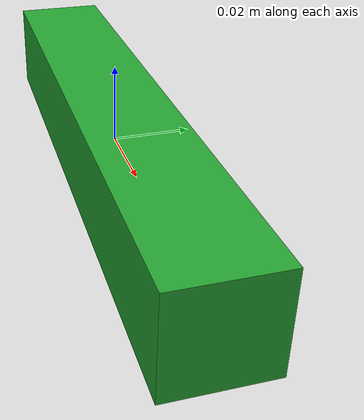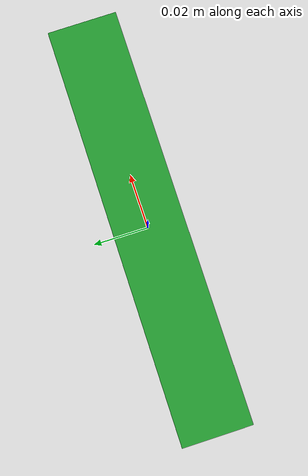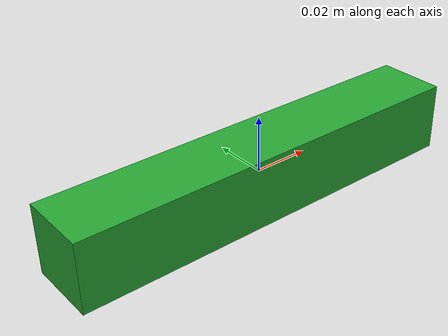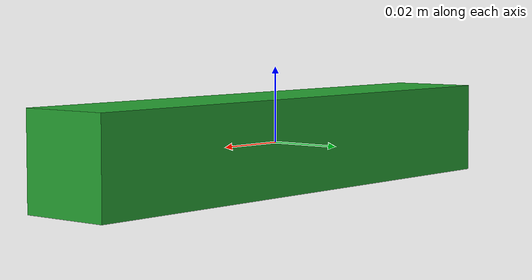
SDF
<?xml version='1.0'?>
<sdf version='1.6'>
  <model name='bar'>
    <link name='link'>
      <inertial>
        <mass>0.1</mass>
        <inertia>
          <ixx>0.00001</ixx> <ixy>0</ixy> <ixz>0</ixz>
          <iyy>0.0002</iyy>  <iyz>0</iyz>
          <izz>0.0002</izz>
        </inertia>
      </inertial>

      <visual name='visual'>
        <geometry>
          <box><size>0.15 0.025 0.025</size></box>
        </geometry>
        <material><script><name>Gazebo/Green</name></script></material>
      </visual>

      <collision name='collision'>
        <geometry>
          <box><size>0.15 0.025 0.025</size></box>
        </geometry>
        <surface>
          <friction>
            <ode>
              <mu>100.0</mu> <mu2>100.0</mu2>
            </ode>
          </friction>
          <contact>
            <ode>
              <kp>100000.0</kp> <kd>1.0</kd>
              <min_depth>0.001</min_depth>
            </ode>
          </contact>
        </surface>
      </collision>
    </link>
  </model>
</sdf>
